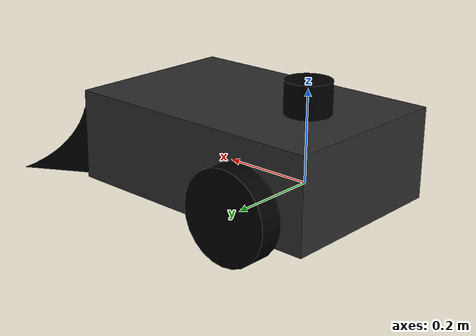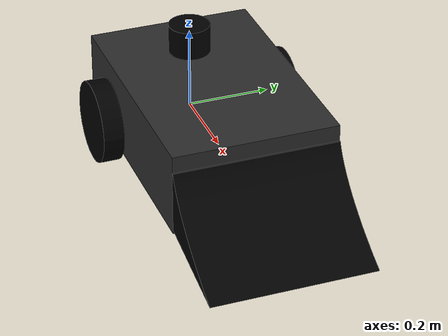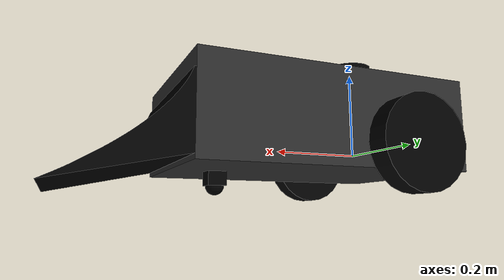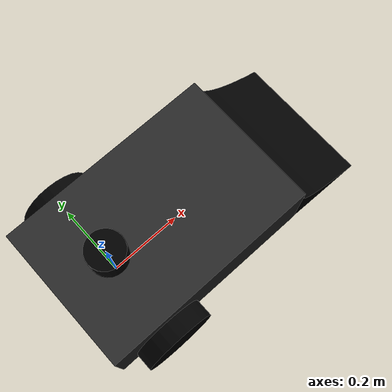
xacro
<?xml version="1.0"?>
<robot xmlns:xacro="http://www.ros.org/wiki/xacro">

    <xacro:include filename="robot_core.xacro"/>

    <!-- RAMP -->
    <joint name="${robot_name}/ramp_joint" type="fixed">
        <parent link="${robot_name}/chassis"/>
        <child link="${robot_name}/ramp"/>
        <origin xyz="0.6 0 0.01"/>
    </joint>
    <link name="${robot_name}/ramp">
        <visual>
            <geometry>
                <mesh filename="file://$(find boxbots)/description/donBarredora/meshes/ramp1x1x1.dae" scale="0.24 0.4 0.2" />
            </geometry>
            <material name="black"/>
        </visual>
        <collision>

            <geometry>
                <mesh filename="file://$(find boxbots)/description/donBarredora/meshes/ramp1x1x1.dae" scale="0.24 0.4 0.2" />
            </geometry>
        </collision>
        <inertial>
            <origin xyz="0.1 0.00000000 -0.00406687"/>
            <mass value="1.00000000"/>
            <inertia ixx="0.01520037" ixy="-0.00000000" ixz="0.00168628" iyy="0.00506596" iyz="0.00000000" izz="0.01653226"/>
        </inertial>
    </link>
    <gazebo reference="${robot_name}/ramp">
        <material>Gazebo/Orange</material>
    </gazebo>
</robot>

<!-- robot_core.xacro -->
<robot xmlns:xacro="http://www.ros.org/wiki/xacro">

    <xacro:include filename="../inertial_macros.xacro"/>

    <material name="white">
        <color rgba="1 1 1 1"/>
    </material>

    <material name="orange">
        <color rgba="1 0.5088 0.0468 1"/>
    </material>

    <material name="blue">
        <color rgba="0.2 0.2 1 1"/>
    </material>

    <material name="black">
        <color rgba="0 0 0 1"/>
    </material>

    <material name="darkGrey">
        <color rgba="0.175 0.175 0.175 1"/>
    </material>

    <material name="red">
        <color rgba="1 0 0 1"/>
    </material>

    <xacro:arg name="robot_name" default="robot_core"/>
    <xacro:property name="robot_name" value="$(arg robot_name)"/>

    <!-- BASE LINK -->
    <link name="${robot_name}/base_link"></link>

    <!-- BASE FOOTPRINT LINK -->
    <!-- for 2d space reference. for mapping-->
    <joint name="${robot_name}/base_footprint_joint" type="fixed">
        <parent link="${robot_name}/base_link"/>
        <child link="${robot_name}/base_footprint"/>
        <origin xyz="0 0 0" rpy="0 0 0"/>
    </joint>

    <link name="${robot_name}/base_footprint"></link>

    <!-- CHASSIS LINK-->
    <joint name="${robot_name}/chassis_joint" type="fixed">
        <parent link="${robot_name}/base_link"/>
        <child link="${robot_name}/chassis"/>
        <origin xyz="-0.15 0 -0.05"/>
    </joint>

    <link name="${robot_name}/chassis">
        <visual>
            <origin xyz="0.3 0 0.1"/>
            <geometry>
                <box size="0.6 0.4 0.2"/>
            </geometry>
            <material name="darkGrey"/>
        </visual>

        <collision>
            <origin xyz="0.3 0 0.1"/>
            <geometry>
                <box size="0.6 0.4 0.2"/>
            </geometry>
        </collision>
        <xacro:inertial_box mass="3" x="0.6" y="0.4" z="0.2">
            <origin xyz="0.3 0 0.1" rpy="0 0 0"/>
        </xacro:inertial_box>
    </link>

    <gazebo reference="${robot_name}/chassis">
        <material>Gazebo/DarkGrey</material>
    </gazebo>

    <!--LEFT WHEEL LINK-->
    <joint name="${robot_name}/left_wheel_joint" type="continuous">
        <parent link="${robot_name}/base_link"/>
        <child link="${robot_name}/left_wheel"/>
        <!-- y=+(ancho/2+grosor_rueda/2)  -->
        <origin xyz="0 0.225 0" rpy="-${pi/2} 0 0"/>
        <axis xyz="0 0 1"/>
    </joint>

    <link name="${robot_name}/left_wheel">
        <visual>
            <geometry>
                <cylinder radius="0.1" length="0.05"/>
            </geometry>
            <material name="black"/>
        </visual>

        <collision>
            <geometry>
                <cylinder radius="0.1" length="0.05"/>
            </geometry>
        </collision>
        <xacro:inertial_cylinder mass="0.2" length="0.05" radius="0.1">
            <origin xyz="0 0 0" rpy="0 0 0"/>
        </xacro:inertial_cylinder>
    </link>

    <gazebo reference="${robot_name}/left_wheel">
        <material>Gazebo/Black</material>
    </gazebo>

    <!--RIGHT WHEEL LINK-->
    <joint name="${robot_name}/right_wheel_joint" type="continuous">
        <parent link="${robot_name}/base_link"/>
        <child link="${robot_name}/right_wheel"/>
        <!-- y=-(ancho/2+grosor_rueda/2)  -->
        <origin xyz="0 -0.225 0" rpy="${pi/2} 0 0"/>
        <axis xyz="0 0 -1"/>
    </joint>

    <link name="${robot_name}/right_wheel">
        <visual>
            <geometry>
                <cylinder radius="0.1" length="0.05"/>
            </geometry>
            <material name="black"/>
        </visual>

        <collision>
            <geometry>
                <cylinder radius="0.1" length="0.05"/>
            </geometry>
        </collision>
        <xacro:inertial_cylinder mass="0.2" length="0.05" radius="0.1">
            <origin xyz="0 0 0" rpy="0 0 0"/>
        </xacro:inertial_cylinder>
    </link>

    <gazebo reference="${robot_name}/right_wheel">
        <material>Gazebo/Black</material>
    </gazebo>

    <!-- CASTER BASE LINK-->

    <joint name="${robot_name}/caster_base_joint" type="fixed">
        <parent link="${robot_name}/chassis"/>
        <child link="${robot_name}/caster_base"/>
        <origin xyz="0.5 0 0"/>
    </joint>

    <link name="${robot_name}/caster_base">
        <visual>
            <origin xyz="0 0 -0.015"/>
            <geometry>

                <box size="0.04 0.04 0.03"/>
            </geometry>
            <material name="black"/>
        </visual>

        <collision>
            <origin xyz="0 0 -0.015"/>
            <geometry>

                <box size="0.04 0.04 0.03"/>
            </geometry>
        </collision>

        <xacro:inertial_box mass="0.02" x="0.02" y="0.02" z="0.03">
            <origin xyz="0 0 -0.015"/>
        </xacro:inertial_box>

    </link>

    <gazebo reference="${robot_name}/caster_wheel">
        <material>Gazebo/Black</material>
    </gazebo>

    <!-- CASTER WHEEL LINK-->

    <joint name="${robot_name}/caster_wheel_joint" type="fixed">
        <parent link="${robot_name}/caster_base"/>
        <child link="${robot_name}/caster_wheel"/>
        <origin xyz="0 0 -0.03"/>
    </joint>

    <link name="${robot_name}/caster_wheel">
        <visual>
            <geometry>
                <sphere radius="0.02"/>
            </geometry>
            <material name="black"/>
        </visual>

        <collision>
            <geometry>
                <sphere radius="0.02"/>
            </geometry>
        </collision>

        <xacro:inertial_sphere mass="0.01" radius="0.02">
            <origin xyz="0 0 0" rpy="0 0 0"/>
        </xacro:inertial_sphere>
    </link>

    <gazebo reference="${robot_name}/caster_wheel">
        <material>Gazebo/Black</material>
        <mu1 value="0.001"/>
        <mu2 value="0.001"/>
    </gazebo>

    <!-- LIDAR SUPPORT LINK-->

    <joint name="${robot_name}/lidar_support_joint" type="fixed">
        <parent link="${robot_name}/chassis"/>
        <child link="${robot_name}/lidar_support"/>
        <origin xyz="0.15 0 0.2"/>
    </joint>

    <link name="${robot_name}/lidar_support">
        <visual>
            <origin xyz="0 0 0.035"/>
            <geometry>
                <cylinder radius="0.05" length="0.07"/>
            </geometry>
            <material name="black"/>
        </visual>
        <collision>
            <origin xyz="0.15 0 0.035"/>
            <geometry>
                <cylinder radius="0.05" length="0.07"/>
            </geometry>
        </collision>
        <xacro:inertial_cylinder mass="0.1" length="0.07" radius="0.05">
            <origin xyz="0 0 0" rpy="0 0 0"/>
        </xacro:inertial_cylinder>

    </link>

    <gazebo reference="${robot_name}/lidar_support">
        <material>Gazebo/Black</material>
    </gazebo>

</robot>
